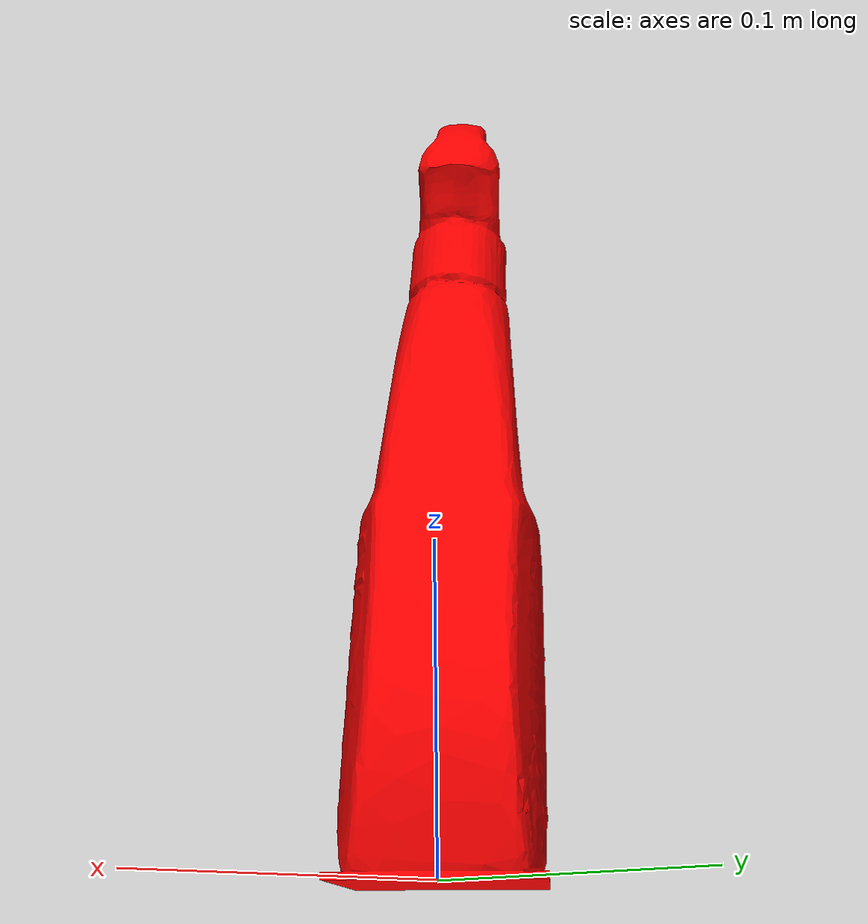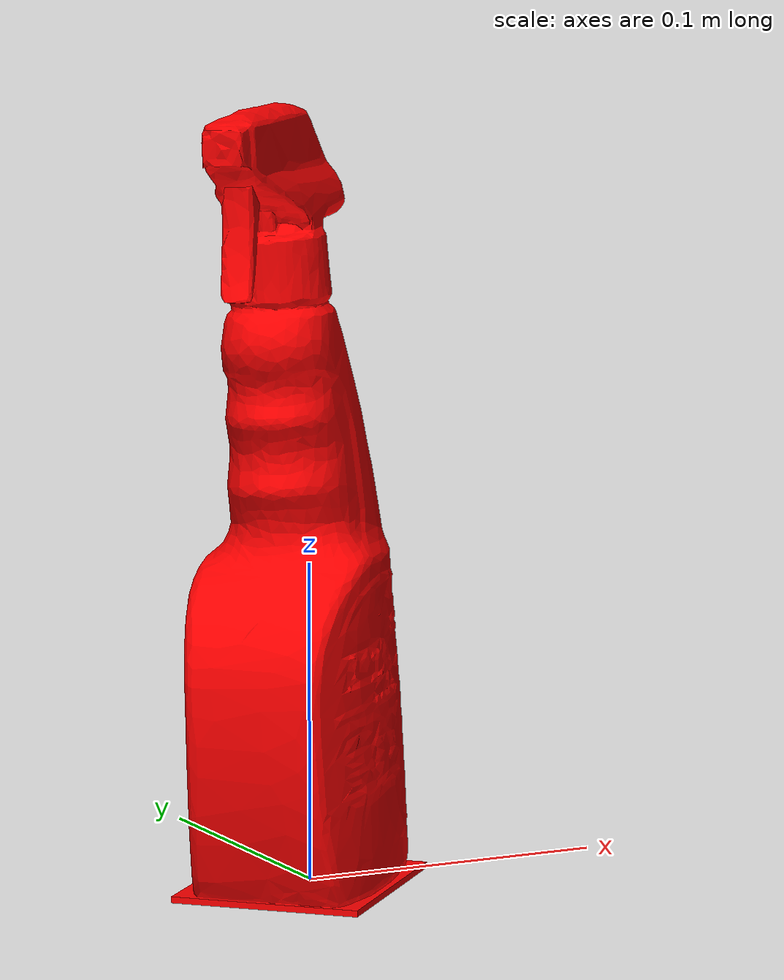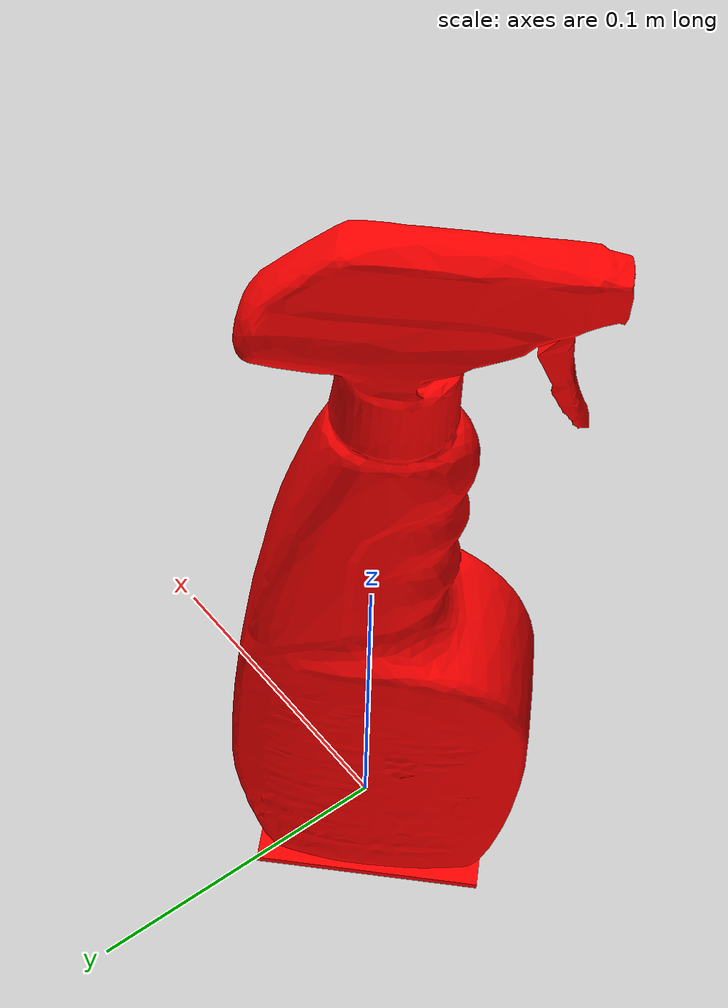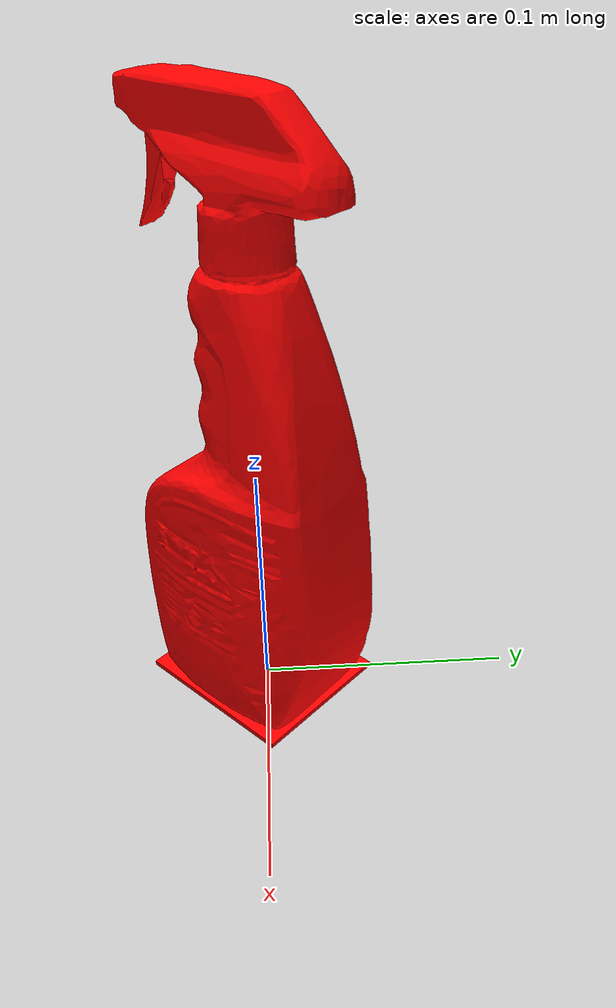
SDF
<?xml version="1.0" ?>
<sdf version="1.5">
  <model name="sprayFlaskAV">
    <link name="link">
      <pose>0 0 0 0 0 0</pose>
      <inertial>
        <mass>1.5</mass>
        <inertia>
          <ixx>0.2492397056</ixx>
          <ixy>-0.0077751712</ixy>
          <ixz>-0.0050550480</ixz>
          <iyy>0.2481659392</iyy>
          <iyz>-0.0060885924</iyz>
          <izz>-0.398319264</izz>
        </inertia>
      </inertial>

      <collision name="collision">
        <geometry>
          <mesh>
            <uri>model://sprayFlaskAV/meshes/sprayFlask.dae</uri>
            <scale>0.001 0.001 0.001</scale>
          </mesh>
        </geometry>
        <surface>
          <contact>
            <ode>
              <max_vel>0.1</max_vel>
              <min_depth>0.001</min_depth>
              <soft_erp>0.5</soft_erp>
              <soft_cfm>0.001</soft_cfm>
            </ode>
          </contact>
          <friction>
            <ode>
              <mu>10000.0</mu>
              <mu2>10000.0</mu2>
            </ode>
          </friction>
        </surface>
      </collision>

      <visual name="visual">
        <geometry>
          <mesh>
            <uri>model://sprayFlaskAV/meshes/sprayFlask.dae</uri>
            <scale>0.001 0.001 0.001</scale>
          </mesh>
        </geometry>
        <material>
          <ambient>1 0 0 1</ambient>
          <diffuse>1 0 0 1</diffuse>
          <specular>0.1 0.1 0.1 1</specular>
          <emissive>0 0 0 0</emissive>
        </material>
      </visual>
    </link>
  </model>
</sdf>
